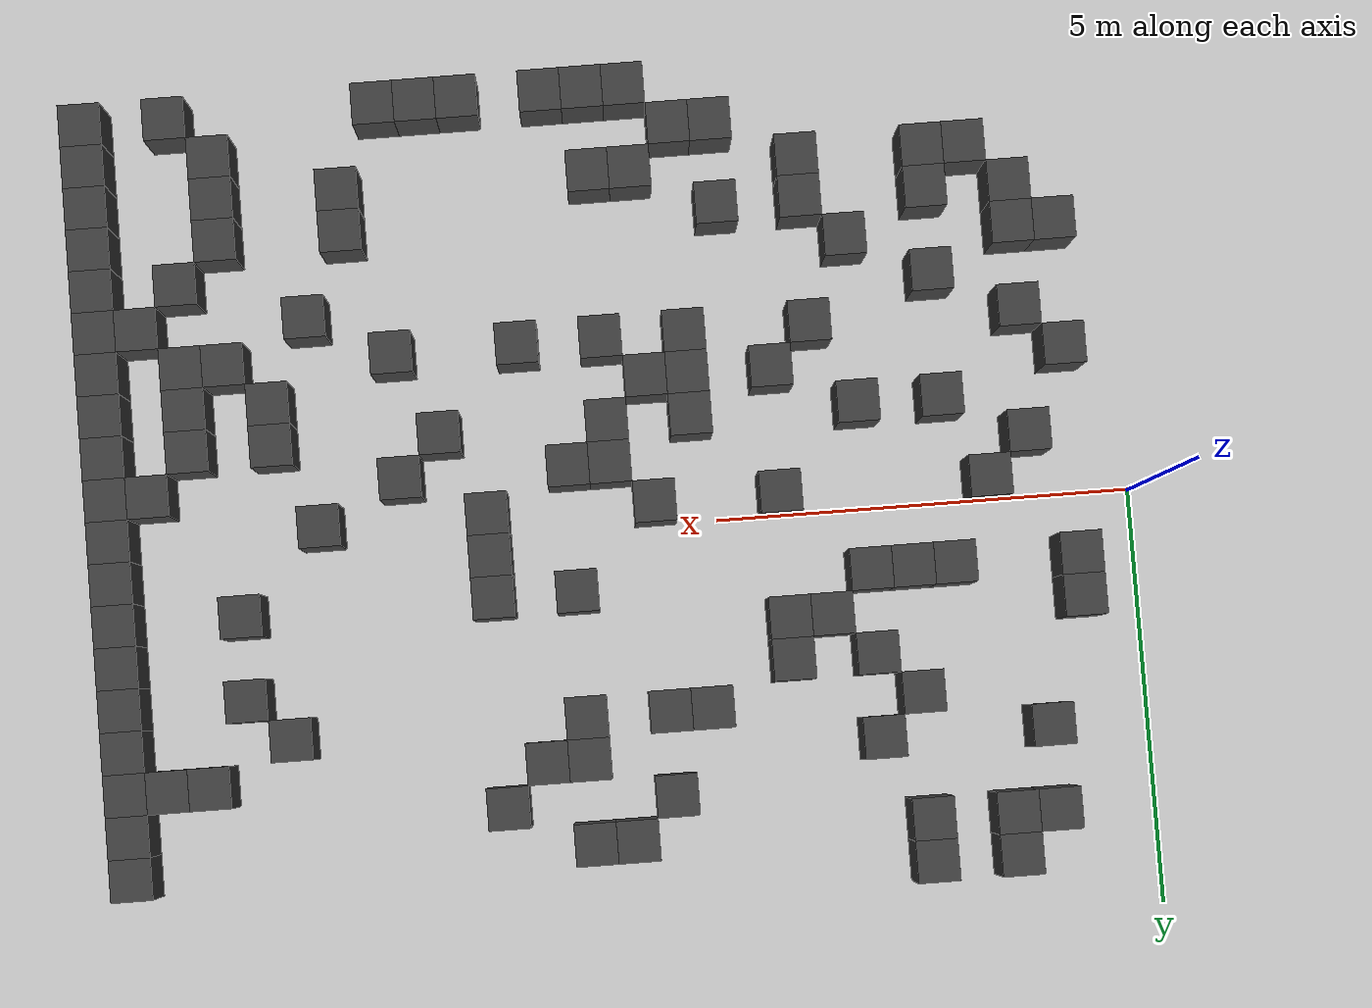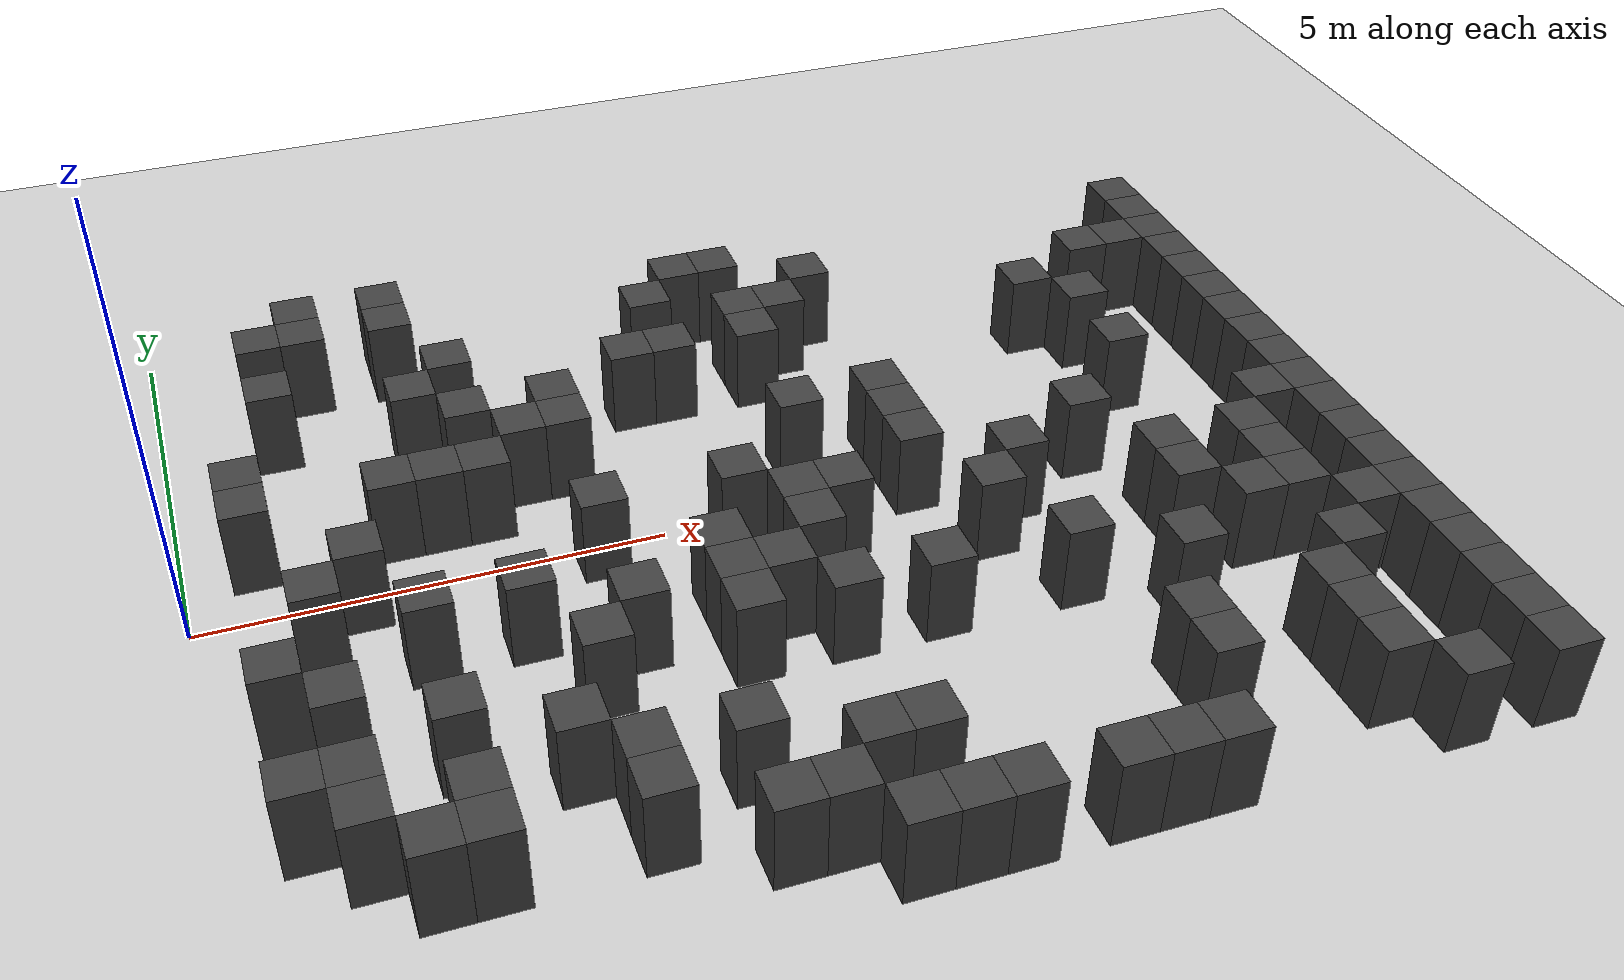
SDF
<sdf version="1.7">
 <world name="map_4390">
  <model name="ground_plane">
   <static>true</static>
   <link name="link">
    <collision name="collision">
     <geometry><plane><normal>0 0 1</normal><size>200 200</size></plane></geometry>
    </collision>
    <visual name="visual">
     <geometry><plane><normal>0 0 1</normal><size>200 200</size></plane></geometry>
     <material><ambient>0.8 0.8 0.8 1</ambient><diffuse>0.8 0.8 0.8 1</diffuse></material>
    </visual>
   </link>
  </model>
  <model name="maze_environment">
   <static>true</static>
   <link name="wall_224">
    <pose>1.750 4.250 0.500 0 0 0</pose>
    <collision name="col"><geometry><box><size>0.5 0.5 1.0</size></box></geometry></collision>
    <visual name="vis">
     <geometry><box><size>0.5 0.5 1.0</size></box></geometry>
     <material><ambient>0.15 0.15 0.15 1</ambient><diffuse>0.25 0.25 0.25 1</diffuse></material>
    </visual>
   </link>
   <link name="wall_225">
    <pose>2.750 4.250 0.500 0 0 0</pose>
    <collision name="col"><geometry><box><size>0.5 0.5 1.0</size></box></geometry></collision>
    <visual name="vis">
     <geometry><box><size>0.5 0.5 1.0</size></box></geometry>
     <material><ambient>0.15 0.15 0.15 1</ambient><diffuse>0.25 0.25 0.25 1</diffuse></material>
    </visual>
   </link>
   <link name="wall_236">
    <pose>1.250 3.750 0.500 0 0 0</pose>
    <collision name="col"><geometry><box><size>0.5 0.5 1.0</size></box></geometry></collision>
    <visual name="vis">
     <geometry><box><size>0.5 0.5 1.0</size></box></geometry>
     <material><ambient>0.15 0.15 0.15 1</ambient><diffuse>0.25 0.25 0.25 1</diffuse></material>
    </visual>
   </link>
   <link name="wall_237">
    <pose>1.750 3.750 0.500 0 0 0</pose>
    <collision name="col"><geometry><box><size>0.5 0.5 1.0</size></box></geometry></collision>
    <visual name="vis">
     <geometry><box><size>0.5 0.5 1.0</size></box></geometry>
     <material><ambient>0.15 0.15 0.15 1</ambient><diffuse>0.25 0.25 0.25 1</diffuse></material>
    </visual>
   </link>
   <link name="wall_238">
    <pose>2.750 3.750 0.500 0 0 0</pose>
    <collision name="col"><geometry><box><size>0.5 0.5 1.0</size></box></geometry></collision>
    <visual name="vis">
     <geometry><box><size>0.5 0.5 1.0</size></box></geometry>
     <material><ambient>0.15 0.15 0.15 1</ambient><diffuse>0.25 0.25 0.25 1</diffuse></material>
    </visual>
   </link>
   <link name="wall_239">
    <pose>6.250 3.750 0.500 0 0 0</pose>
    <collision name="col"><geometry><box><size>0.5 0.5 1.0</size></box></geometry></collision>
    <visual name="vis">
     <geometry><box><size>0.5 0.5 1.0</size></box></geometry>
     <material><ambient>0.15 0.15 0.15 1</ambient><diffuse>0.25 0.25 0.25 1</diffuse></material>
    </visual>
   </link>
   <link name="wall_240">
    <pose>6.750 3.750 0.500 0 0 0</pose>
    <collision name="col"><geometry><box><size>0.5 0.5 1.0</size></box></geometry></collision>
    <visual name="vis">
     <geometry><box><size>0.5 0.5 1.0</size></box></geometry>
     <material><ambient>0.15 0.15 0.15 1</ambient><diffuse>0.25 0.25 0.25 1</diffuse></material>
    </visual>
   </link>
   <link name="wall_241">
    <pose>12.250 3.750 0.500 0 0 0</pose>
    <collision name="col"><geometry><box><size>0.5 0.5 1.0</size></box></geometry></collision>
    <visual name="vis">
     <geometry><box><size>0.5 0.5 1.0</size></box></geometry>
     <material><ambient>0.15 0.15 0.15 1</ambient><diffuse>0.25 0.25 0.25 1</diffuse></material>
    </visual>
   </link>
   <link name="wall_248">
    <pose>5.750 3.250 0.500 0 0 0</pose>
    <collision name="col"><geometry><box><size>0.5 0.5 1.0</size></box></geometry></collision>
    <visual name="vis">
     <geometry><box><size>0.5 0.5 1.0</size></box></geometry>
     <material><ambient>0.15 0.15 0.15 1</ambient><diffuse>0.25 0.25 0.25 1</diffuse></material>
    </visual>
   </link>
   <link name="wall_249">
    <pose>7.750 3.250 0.500 0 0 0</pose>
    <collision name="col"><geometry><box><size>0.5 0.5 1.0</size></box></geometry></collision>
    <visual name="vis">
     <geometry><box><size>0.5 0.5 1.0</size></box></geometry>
     <material><ambient>0.15 0.15 0.15 1</ambient><diffuse>0.25 0.25 0.25 1</diffuse></material>
    </visual>
   </link>
   <link name="wall_250">
    <pose>12.250 3.250 0.500 0 0 0</pose>
    <collision name="col"><geometry><box><size>0.5 0.5 1.0</size></box></geometry></collision>
    <visual name="vis">
     <geometry><box><size>0.5 0.5 1.0</size></box></geometry>
     <material><ambient>0.15 0.15 0.15 1</ambient><diffuse>0.25 0.25 0.25 1</diffuse></material>
    </visual>
   </link>
   <link name="wall_261">
    <pose>1.250 2.750 0.500 0 0 0</pose>
    <collision name="col"><geometry><box><size>0.5 0.5 1.0</size></box></geometry></collision>
    <visual name="vis">
     <geometry><box><size>0.5 0.5 1.0</size></box></geometry>
     <material><ambient>0.15 0.15 0.15 1</ambient><diffuse>0.25 0.25 0.25 1</diffuse></material>
    </visual>
   </link>
   <link name="wall_262">
    <pose>3.250 2.750 0.500 0 0 0</pose>
    <collision name="col"><geometry><box><size>0.5 0.5 1.0</size></box></geometry></collision>
    <visual name="vis">
     <geometry><box><size>0.5 0.5 1.0</size></box></geometry>
     <material><ambient>0.15 0.15 0.15 1</ambient><diffuse>0.25 0.25 0.25 1</diffuse></material>
    </visual>
   </link>
   <link name="wall_263">
    <pose>6.750 2.750 0.500 0 0 0</pose>
    <collision name="col"><geometry><box><size>0.5 0.5 1.0</size></box></geometry></collision>
    <visual name="vis">
     <geometry><box><size>0.5 0.5 1.0</size></box></geometry>
     <material><ambient>0.15 0.15 0.15 1</ambient><diffuse>0.25 0.25 0.25 1</diffuse></material>
    </visual>
   </link>
   <link name="wall_264">
    <pose>7.250 2.750 0.500 0 0 0</pose>
    <collision name="col"><geometry><box><size>0.5 0.5 1.0</size></box></geometry></collision>
    <visual name="vis">
     <geometry><box><size>0.5 0.5 1.0</size></box></geometry>
     <material><ambient>0.15 0.15 0.15 1</ambient><diffuse>0.25 0.25 0.25 1</diffuse></material>
    </visual>
   </link>
   <link name="wall_265">
    <pose>11.250 2.750 0.500 0 0 0</pose>
    <collision name="col"><geometry><box><size>0.5 0.5 1.0</size></box></geometry></collision>
    <visual name="vis">
     <geometry><box><size>0.5 0.5 1.0</size></box></geometry>
     <material><ambient>0.15 0.15 0.15 1</ambient><diffuse>0.25 0.25 0.25 1</diffuse></material>
    </visual>
   </link>
   <link name="wall_266">
    <pose>11.750 2.750 0.500 0 0 0</pose>
    <collision name="col"><geometry><box><size>0.5 0.5 1.0</size></box></geometry></collision>
    <visual name="vis">
     <geometry><box><size>0.5 0.5 1.0</size></box></geometry>
     <material><ambient>0.15 0.15 0.15 1</ambient><diffuse>0.25 0.25 0.25 1</diffuse></material>
    </visual>
   </link>
   <link name="wall_267">
    <pose>12.250 2.750 0.500 0 0 0</pose>
    <collision name="col"><geometry><box><size>0.5 0.5 1.0</size></box></geometry></collision>
    <visual name="vis">
     <geometry><box><size>0.5 0.5 1.0</size></box></geometry>
     <material><ambient>0.15 0.15 0.15 1</ambient><diffuse>0.25 0.25 0.25 1</diffuse></material>
    </visual>
   </link>
   <link name="wall_273">
    <pose>2.750 2.250 0.500 0 0 0</pose>
    <collision name="col"><geometry><box><size>0.5 0.5 1.0</size></box></geometry></collision>
    <visual name="vis">
     <geometry><box><size>0.5 0.5 1.0</size></box></geometry>
     <material><ambient>0.15 0.15 0.15 1</ambient><diffuse>0.25 0.25 0.25 1</diffuse></material>
    </visual>
   </link>
   <link name="wall_274">
    <pose>5.250 2.250 0.500 0 0 0</pose>
    <collision name="col"><geometry><box><size>0.5 0.5 1.0</size></box></geometry></collision>
    <visual name="vis">
     <geometry><box><size>0.5 0.5 1.0</size></box></geometry>
     <material><ambient>0.15 0.15 0.15 1</ambient><diffuse>0.25 0.25 0.25 1</diffuse></material>
    </visual>
   </link>
   <link name="wall_275">
    <pose>5.750 2.250 0.500 0 0 0</pose>
    <collision name="col"><geometry><box><size>0.5 0.5 1.0</size></box></geometry></collision>
    <visual name="vis">
     <geometry><box><size>0.5 0.5 1.0</size></box></geometry>
     <material><ambient>0.15 0.15 0.15 1</ambient><diffuse>0.25 0.25 0.25 1</diffuse></material>
    </visual>
   </link>
   <link name="wall_276">
    <pose>6.750 2.250 0.500 0 0 0</pose>
    <collision name="col"><geometry><box><size>0.5 0.5 1.0</size></box></geometry></collision>
    <visual name="vis">
     <geometry><box><size>0.5 0.5 1.0</size></box></geometry>
     <material><ambient>0.15 0.15 0.15 1</ambient><diffuse>0.25 0.25 0.25 1</diffuse></material>
    </visual>
   </link>
   <link name="wall_277">
    <pose>10.250 2.250 0.500 0 0 0</pose>
    <collision name="col"><geometry><box><size>0.5 0.5 1.0</size></box></geometry></collision>
    <visual name="vis">
     <geometry><box><size>0.5 0.5 1.0</size></box></geometry>
     <material><ambient>0.15 0.15 0.15 1</ambient><diffuse>0.25 0.25 0.25 1</diffuse></material>
    </visual>
   </link>
   <link name="wall_278">
    <pose>12.250 2.250 0.500 0 0 0</pose>
    <collision name="col"><geometry><box><size>0.5 0.5 1.0</size></box></geometry></collision>
    <visual name="vis">
     <geometry><box><size>0.5 0.5 1.0</size></box></geometry>
     <material><ambient>0.15 0.15 0.15 1</ambient><diffuse>0.25 0.25 0.25 1</diffuse></material>
    </visual>
   </link>
   <link name="wall_285">
    <pose>3.250 1.750 0.500 0 0 0</pose>
    <collision name="col"><geometry><box><size>0.5 0.5 1.0</size></box></geometry></collision>
    <visual name="vis">
     <geometry><box><size>0.5 0.5 1.0</size></box></geometry>
     <material><ambient>0.15 0.15 0.15 1</ambient><diffuse>0.25 0.25 0.25 1</diffuse></material>
    </visual>
   </link>
   <link name="wall_286">
    <pose>4.250 1.750 0.500 0 0 0</pose>
    <collision name="col"><geometry><box><size>0.5 0.5 1.0</size></box></geometry></collision>
    <visual name="vis">
     <geometry><box><size>0.5 0.5 1.0</size></box></geometry>
     <material><ambient>0.15 0.15 0.15 1</ambient><diffuse>0.25 0.25 0.25 1</diffuse></material>
    </visual>
   </link>
   <link name="wall_287">
    <pose>10.750 1.750 0.500 0 0 0</pose>
    <collision name="col"><geometry><box><size>0.5 0.5 1.0</size></box></geometry></collision>
    <visual name="vis">
     <geometry><box><size>0.5 0.5 1.0</size></box></geometry>
     <material><ambient>0.15 0.15 0.15 1</ambient><diffuse>0.25 0.25 0.25 1</diffuse></material>
    </visual>
   </link>
   <link name="wall_288">
    <pose>12.250 1.750 0.500 0 0 0</pose>
    <collision name="col"><geometry><box><size>0.5 0.5 1.0</size></box></geometry></collision>
    <visual name="vis">
     <geometry><box><size>0.5 0.5 1.0</size></box></geometry>
     <material><ambient>0.15 0.15 0.15 1</ambient><diffuse>0.25 0.25 0.25 1</diffuse></material>
    </visual>
   </link>
   <link name="wall_299">
    <pose>0.750 1.250 0.500 0 0 0</pose>
    <collision name="col"><geometry><box><size>0.5 0.5 1.0</size></box></geometry></collision>
    <visual name="vis">
     <geometry><box><size>0.5 0.5 1.0</size></box></geometry>
     <material><ambient>0.15 0.15 0.15 1</ambient><diffuse>0.25 0.25 0.25 1</diffuse></material>
    </visual>
   </link>
   <link name="wall_300">
    <pose>3.750 1.250 0.500 0 0 0</pose>
    <collision name="col"><geometry><box><size>0.5 0.5 1.0</size></box></geometry></collision>
    <visual name="vis">
     <geometry><box><size>0.5 0.5 1.0</size></box></geometry>
     <material><ambient>0.15 0.15 0.15 1</ambient><diffuse>0.25 0.25 0.25 1</diffuse></material>
    </visual>
   </link>
   <link name="wall_301">
    <pose>4.250 1.250 0.500 0 0 0</pose>
    <collision name="col"><geometry><box><size>0.5 0.5 1.0</size></box></geometry></collision>
    <visual name="vis">
     <geometry><box><size>0.5 0.5 1.0</size></box></geometry>
     <material><ambient>0.15 0.15 0.15 1</ambient><diffuse>0.25 0.25 0.25 1</diffuse></material>
    </visual>
   </link>
   <link name="wall_302">
    <pose>12.250 1.250 0.500 0 0 0</pose>
    <collision name="col"><geometry><box><size>0.5 0.5 1.0</size></box></geometry></collision>
    <visual name="vis">
     <geometry><box><size>0.5 0.5 1.0</size></box></geometry>
     <material><ambient>0.15 0.15 0.15 1</ambient><diffuse>0.25 0.25 0.25 1</diffuse></material>
    </visual>
   </link>
   <link name="wall_307">
    <pose>0.750 0.750 0.500 0 0 0</pose>
    <collision name="col"><geometry><box><size>0.5 0.5 1.0</size></box></geometry></collision>
    <visual name="vis">
     <geometry><box><size>0.5 0.5 1.0</size></box></geometry>
     <material><ambient>0.15 0.15 0.15 1</ambient><diffuse>0.25 0.25 0.25 1</diffuse></material>
    </visual>
   </link>
   <link name="wall_308">
    <pose>2.250 0.750 0.500 0 0 0</pose>
    <collision name="col"><geometry><box><size>0.5 0.5 1.0</size></box></geometry></collision>
    <visual name="vis">
     <geometry><box><size>0.5 0.5 1.0</size></box></geometry>
     <material><ambient>0.15 0.15 0.15 1</ambient><diffuse>0.25 0.25 0.25 1</diffuse></material>
    </visual>
   </link>
   <link name="wall_309">
    <pose>2.750 0.750 0.500 0 0 0</pose>
    <collision name="col"><geometry><box><size>0.5 0.5 1.0</size></box></geometry></collision>
    <visual name="vis">
     <geometry><box><size>0.5 0.5 1.0</size></box></geometry>
     <material><ambient>0.15 0.15 0.15 1</ambient><diffuse>0.25 0.25 0.25 1</diffuse></material>
    </visual>
   </link>
   <link name="wall_310">
    <pose>3.250 0.750 0.500 0 0 0</pose>
    <collision name="col"><geometry><box><size>0.5 0.5 1.0</size></box></geometry></collision>
    <visual name="vis">
     <geometry><box><size>0.5 0.5 1.0</size></box></geometry>
     <material><ambient>0.15 0.15 0.15 1</ambient><diffuse>0.25 0.25 0.25 1</diffuse></material>
    </visual>
   </link>
   <link name="wall_311">
    <pose>6.750 0.750 0.500 0 0 0</pose>
    <collision name="col"><geometry><box><size>0.5 0.5 1.0</size></box></geometry></collision>
    <visual name="vis">
     <geometry><box><size>0.5 0.5 1.0</size></box></geometry>
     <material><ambient>0.15 0.15 0.15 1</ambient><diffuse>0.25 0.25 0.25 1</diffuse></material>
    </visual>
   </link>
   <link name="wall_312">
    <pose>7.750 0.750 0.500 0 0 0</pose>
    <collision name="col"><geometry><box><size>0.5 0.5 1.0</size></box></geometry></collision>
    <visual name="vis">
     <geometry><box><size>0.5 0.5 1.0</size></box></geometry>
     <material><ambient>0.15 0.15 0.15 1</ambient><diffuse>0.25 0.25 0.25 1</diffuse></material>
    </visual>
   </link>
   <link name="wall_313">
    <pose>10.750 0.750 0.500 0 0 0</pose>
    <collision name="col"><geometry><box><size>0.5 0.5 1.0</size></box></geometry></collision>
    <visual name="vis">
     <geometry><box><size>0.5 0.5 1.0</size></box></geometry>
     <material><ambient>0.15 0.15 0.15 1</ambient><diffuse>0.25 0.25 0.25 1</diffuse></material>
    </visual>
   </link>
   <link name="wall_314">
    <pose>12.250 0.750 0.500 0 0 0</pose>
    <collision name="col"><geometry><box><size>0.5 0.5 1.0</size></box></geometry></collision>
    <visual name="vis">
     <geometry><box><size>0.5 0.5 1.0</size></box></geometry>
     <material><ambient>0.15 0.15 0.15 1</ambient><diffuse>0.25 0.25 0.25 1</diffuse></material>
    </visual>
   </link>
   <link name="wall_322">
    <pose>7.750 0.250 0.500 0 0 0</pose>
    <collision name="col"><geometry><box><size>0.5 0.5 1.0</size></box></geometry></collision>
    <visual name="vis">
     <geometry><box><size>0.5 0.5 1.0</size></box></geometry>
     <material><ambient>0.15 0.15 0.15 1</ambient><diffuse>0.25 0.25 0.25 1</diffuse></material>
    </visual>
   </link>
   <link name="wall_323">
    <pose>12.250 0.250 0.500 0 0 0</pose>
    <collision name="col"><geometry><box><size>0.5 0.5 1.0</size></box></geometry></collision>
    <visual name="vis">
     <geometry><box><size>0.5 0.5 1.0</size></box></geometry>
     <material><ambient>0.15 0.15 0.15 1</ambient><diffuse>0.25 0.25 0.25 1</diffuse></material>
    </visual>
   </link>
   <link name="wall_333">
    <pose>1.750 -0.250 0.500 0 0 0</pose>
    <collision name="col"><geometry><box><size>0.5 0.5 1.0</size></box></geometry></collision>
    <visual name="vis">
     <geometry><box><size>0.5 0.5 1.0</size></box></geometry>
     <material><ambient>0.15 0.15 0.15 1</ambient><diffuse>0.25 0.25 0.25 1</diffuse></material>
    </visual>
   </link>
   <link name="wall_334">
    <pose>4.250 -0.250 0.500 0 0 0</pose>
    <collision name="col"><geometry><box><size>0.5 0.5 1.0</size></box></geometry></collision>
    <visual name="vis">
     <geometry><box><size>0.5 0.5 1.0</size></box></geometry>
     <material><ambient>0.15 0.15 0.15 1</ambient><diffuse>0.25 0.25 0.25 1</diffuse></material>
    </visual>
   </link>
   <link name="wall_335">
    <pose>5.750 -0.250 0.500 0 0 0</pose>
    <collision name="col"><geometry><box><size>0.5 0.5 1.0</size></box></geometry></collision>
    <visual name="vis">
     <geometry><box><size>0.5 0.5 1.0</size></box></geometry>
     <material><ambient>0.15 0.15 0.15 1</ambient><diffuse>0.25 0.25 0.25 1</diffuse></material>
    </visual>
   </link>
   <link name="wall_336">
    <pose>7.750 -0.250 0.500 0 0 0</pose>
    <collision name="col"><geometry><box><size>0.5 0.5 1.0</size></box></geometry></collision>
    <visual name="vis">
     <geometry><box><size>0.5 0.5 1.0</size></box></geometry>
     <material><ambient>0.15 0.15 0.15 1</ambient><diffuse>0.25 0.25 0.25 1</diffuse></material>
    </visual>
   </link>
   <link name="wall_337">
    <pose>9.750 -0.250 0.500 0 0 0</pose>
    <collision name="col"><geometry><box><size>0.5 0.5 1.0</size></box></geometry></collision>
    <visual name="vis">
     <geometry><box><size>0.5 0.5 1.0</size></box></geometry>
     <material><ambient>0.15 0.15 0.15 1</ambient><diffuse>0.25 0.25 0.25 1</diffuse></material>
    </visual>
   </link>
   <link name="wall_338">
    <pose>12.250 -0.250 0.500 0 0 0</pose>
    <collision name="col"><geometry><box><size>0.5 0.5 1.0</size></box></geometry></collision>
    <visual name="vis">
     <geometry><box><size>0.5 0.5 1.0</size></box></geometry>
     <material><ambient>0.15 0.15 0.15 1</ambient><diffuse>0.25 0.25 0.25 1</diffuse></material>
    </visual>
   </link>
   <link name="wall_347">
    <pose>1.250 -0.750 0.500 0 0 0</pose>
    <collision name="col"><geometry><box><size>0.5 0.5 1.0</size></box></geometry></collision>
    <visual name="vis">
     <geometry><box><size>0.5 0.5 1.0</size></box></geometry>
     <material><ambient>0.15 0.15 0.15 1</ambient><diffuse>0.25 0.25 0.25 1</diffuse></material>
    </visual>
   </link>
   <link name="wall_348">
    <pose>6.250 -0.750 0.500 0 0 0</pose>
    <collision name="col"><geometry><box><size>0.5 0.5 1.0</size></box></geometry></collision>
    <visual name="vis">
     <geometry><box><size>0.5 0.5 1.0</size></box></geometry>
     <material><ambient>0.15 0.15 0.15 1</ambient><diffuse>0.25 0.25 0.25 1</diffuse></material>
    </visual>
   </link>
   <link name="wall_349">
    <pose>6.750 -0.750 0.500 0 0 0</pose>
    <collision name="col"><geometry><box><size>0.5 0.5 1.0</size></box></geometry></collision>
    <visual name="vis">
     <geometry><box><size>0.5 0.5 1.0</size></box></geometry>
     <material><ambient>0.15 0.15 0.15 1</ambient><diffuse>0.25 0.25 0.25 1</diffuse></material>
    </visual>
   </link>
   <link name="wall_350">
    <pose>8.750 -0.750 0.500 0 0 0</pose>
    <collision name="col"><geometry><box><size>0.5 0.5 1.0</size></box></geometry></collision>
    <visual name="vis">
     <geometry><box><size>0.5 0.5 1.0</size></box></geometry>
     <material><ambient>0.15 0.15 0.15 1</ambient><diffuse>0.25 0.25 0.25 1</diffuse></material>
    </visual>
   </link>
   <link name="wall_351">
    <pose>11.750 -0.750 0.500 0 0 0</pose>
    <collision name="col"><geometry><box><size>0.5 0.5 1.0</size></box></geometry></collision>
    <visual name="vis">
     <geometry><box><size>0.5 0.5 1.0</size></box></geometry>
     <material><ambient>0.15 0.15 0.15 1</ambient><diffuse>0.25 0.25 0.25 1</diffuse></material>
    </visual>
   </link>
   <link name="wall_352">
    <pose>12.250 -0.750 0.500 0 0 0</pose>
    <collision name="col"><geometry><box><size>0.5 0.5 1.0</size></box></geometry></collision>
    <visual name="vis">
     <geometry><box><size>0.5 0.5 1.0</size></box></geometry>
     <material><ambient>0.15 0.15 0.15 1</ambient><diffuse>0.25 0.25 0.25 1</diffuse></material>
    </visual>
   </link>
   <link name="wall_360">
    <pose>2.250 -1.250 0.500 0 0 0</pose>
    <collision name="col"><geometry><box><size>0.5 0.5 1.0</size></box></geometry></collision>
    <visual name="vis">
     <geometry><box><size>0.5 0.5 1.0</size></box></geometry>
     <material><ambient>0.15 0.15 0.15 1</ambient><diffuse>0.25 0.25 0.25 1</diffuse></material>
    </visual>
   </link>
   <link name="wall_361">
    <pose>3.250 -1.250 0.500 0 0 0</pose>
    <collision name="col"><geometry><box><size>0.5 0.5 1.0</size></box></geometry></collision>
    <visual name="vis">
     <geometry><box><size>0.5 0.5 1.0</size></box></geometry>
     <material><ambient>0.15 0.15 0.15 1</ambient><diffuse>0.25 0.25 0.25 1</diffuse></material>
    </visual>
   </link>
   <link name="wall_362">
    <pose>5.250 -1.250 0.500 0 0 0</pose>
    <collision name="col"><geometry><box><size>0.5 0.5 1.0</size></box></geometry></collision>
    <visual name="vis">
     <geometry><box><size>0.5 0.5 1.0</size></box></geometry>
     <material><ambient>0.15 0.15 0.15 1</ambient><diffuse>0.25 0.25 0.25 1</diffuse></material>
    </visual>
   </link>
   <link name="wall_363">
    <pose>6.250 -1.250 0.500 0 0 0</pose>
    <collision name="col"><geometry><box><size>0.5 0.5 1.0</size></box></geometry></collision>
    <visual name="vis">
     <geometry><box><size>0.5 0.5 1.0</size></box></geometry>
     <material><ambient>0.15 0.15 0.15 1</ambient><diffuse>0.25 0.25 0.25 1</diffuse></material>
    </visual>
   </link>
   <link name="wall_364">
    <pose>8.250 -1.250 0.500 0 0 0</pose>
    <collision name="col"><geometry><box><size>0.5 0.5 1.0</size></box></geometry></collision>
    <visual name="vis">
     <geometry><box><size>0.5 0.5 1.0</size></box></geometry>
     <material><ambient>0.15 0.15 0.15 1</ambient><diffuse>0.25 0.25 0.25 1</diffuse></material>
    </visual>
   </link>
   <link name="wall_365">
    <pose>10.250 -1.250 0.500 0 0 0</pose>
    <collision name="col"><geometry><box><size>0.5 0.5 1.0</size></box></geometry></collision>
    <visual name="vis">
     <geometry><box><size>0.5 0.5 1.0</size></box></geometry>
     <material><ambient>0.15 0.15 0.15 1</ambient><diffuse>0.25 0.25 0.25 1</diffuse></material>
    </visual>
   </link>
   <link name="wall_366">
    <pose>11.250 -1.250 0.500 0 0 0</pose>
    <collision name="col"><geometry><box><size>0.5 0.5 1.0</size></box></geometry></collision>
    <visual name="vis">
     <geometry><box><size>0.5 0.5 1.0</size></box></geometry>
     <material><ambient>0.15 0.15 0.15 1</ambient><diffuse>0.25 0.25 0.25 1</diffuse></material>
    </visual>
   </link>
   <link name="wall_367">
    <pose>12.250 -1.250 0.500 0 0 0</pose>
    <collision name="col"><geometry><box><size>0.5 0.5 1.0</size></box></geometry></collision>
    <visual name="vis">
     <geometry><box><size>0.5 0.5 1.0</size></box></geometry>
     <material><ambient>0.15 0.15 0.15 1</ambient><diffuse>0.25 0.25 0.25 1</diffuse></material>
    </visual>
   </link>
   <link name="wall_374">
    <pose>0.750 -1.750 0.500 0 0 0</pose>
    <collision name="col"><geometry><box><size>0.5 0.5 1.0</size></box></geometry></collision>
    <visual name="vis">
     <geometry><box><size>0.5 0.5 1.0</size></box></geometry>
     <material><ambient>0.15 0.15 0.15 1</ambient><diffuse>0.25 0.25 0.25 1</diffuse></material>
    </visual>
   </link>
   <link name="wall_375">
    <pose>4.250 -1.750 0.500 0 0 0</pose>
    <collision name="col"><geometry><box><size>0.5 0.5 1.0</size></box></geometry></collision>
    <visual name="vis">
     <geometry><box><size>0.5 0.5 1.0</size></box></geometry>
     <material><ambient>0.15 0.15 0.15 1</ambient><diffuse>0.25 0.25 0.25 1</diffuse></material>
    </visual>
   </link>
   <link name="wall_376">
    <pose>5.250 -1.750 0.500 0 0 0</pose>
    <collision name="col"><geometry><box><size>0.5 0.5 1.0</size></box></geometry></collision>
    <visual name="vis">
     <geometry><box><size>0.5 0.5 1.0</size></box></geometry>
     <material><ambient>0.15 0.15 0.15 1</ambient><diffuse>0.25 0.25 0.25 1</diffuse></material>
    </visual>
   </link>
   <link name="wall_377">
    <pose>5.750 -1.750 0.500 0 0 0</pose>
    <collision name="col"><geometry><box><size>0.5 0.5 1.0</size></box></geometry></collision>
    <visual name="vis">
     <geometry><box><size>0.5 0.5 1.0</size></box></geometry>
     <material><ambient>0.15 0.15 0.15 1</ambient><diffuse>0.25 0.25 0.25 1</diffuse></material>
    </visual>
   </link>
   <link name="wall_378">
    <pose>10.250 -1.750 0.500 0 0 0</pose>
    <collision name="col"><geometry><box><size>0.5 0.5 1.0</size></box></geometry></collision>
    <visual name="vis">
     <geometry><box><size>0.5 0.5 1.0</size></box></geometry>
     <material><ambient>0.15 0.15 0.15 1</ambient><diffuse>0.25 0.25 0.25 1</diffuse></material>
    </visual>
   </link>
   <link name="wall_379">
    <pose>11.250 -1.750 0.500 0 0 0</pose>
    <collision name="col"><geometry><box><size>0.5 0.5 1.0</size></box></geometry></collision>
    <visual name="vis">
     <geometry><box><size>0.5 0.5 1.0</size></box></geometry>
     <material><ambient>0.15 0.15 0.15 1</ambient><diffuse>0.25 0.25 0.25 1</diffuse></material>
    </visual>
   </link>
   <link name="wall_380">
    <pose>12.250 -1.750 0.500 0 0 0</pose>
    <collision name="col"><geometry><box><size>0.5 0.5 1.0</size></box></geometry></collision>
    <visual name="vis">
     <geometry><box><size>0.5 0.5 1.0</size></box></geometry>
     <material><ambient>0.15 0.15 0.15 1</ambient><diffuse>0.25 0.25 0.25 1</diffuse></material>
    </visual>
   </link>
   <link name="wall_387">
    <pose>1.250 -2.250 0.500 0 0 0</pose>
    <collision name="col"><geometry><box><size>0.5 0.5 1.0</size></box></geometry></collision>
    <visual name="vis">
     <geometry><box><size>0.5 0.5 1.0</size></box></geometry>
     <material><ambient>0.15 0.15 0.15 1</ambient><diffuse>0.25 0.25 0.25 1</diffuse></material>
    </visual>
   </link>
   <link name="wall_388">
    <pose>3.750 -2.250 0.500 0 0 0</pose>
    <collision name="col"><geometry><box><size>0.5 0.5 1.0</size></box></geometry></collision>
    <visual name="vis">
     <geometry><box><size>0.5 0.5 1.0</size></box></geometry>
     <material><ambient>0.15 0.15 0.15 1</ambient><diffuse>0.25 0.25 0.25 1</diffuse></material>
    </visual>
   </link>
   <link name="wall_389">
    <pose>5.250 -2.250 0.500 0 0 0</pose>
    <collision name="col"><geometry><box><size>0.5 0.5 1.0</size></box></geometry></collision>
    <visual name="vis">
     <geometry><box><size>0.5 0.5 1.0</size></box></geometry>
     <material><ambient>0.15 0.15 0.15 1</ambient><diffuse>0.25 0.25 0.25 1</diffuse></material>
    </visual>
   </link>
   <link name="wall_390">
    <pose>6.250 -2.250 0.500 0 0 0</pose>
    <collision name="col"><geometry><box><size>0.5 0.5 1.0</size></box></geometry></collision>
    <visual name="vis">
     <geometry><box><size>0.5 0.5 1.0</size></box></geometry>
     <material><ambient>0.15 0.15 0.15 1</ambient><diffuse>0.25 0.25 0.25 1</diffuse></material>
    </visual>
   </link>
   <link name="wall_391">
    <pose>7.250 -2.250 0.500 0 0 0</pose>
    <collision name="col"><geometry><box><size>0.5 0.5 1.0</size></box></geometry></collision>
    <visual name="vis">
     <geometry><box><size>0.5 0.5 1.0</size></box></geometry>
     <material><ambient>0.15 0.15 0.15 1</ambient><diffuse>0.25 0.25 0.25 1</diffuse></material>
    </visual>
   </link>
   <link name="wall_392">
    <pose>8.750 -2.250 0.500 0 0 0</pose>
    <collision name="col"><geometry><box><size>0.5 0.5 1.0</size></box></geometry></collision>
    <visual name="vis">
     <geometry><box><size>0.5 0.5 1.0</size></box></geometry>
     <material><ambient>0.15 0.15 0.15 1</ambient><diffuse>0.25 0.25 0.25 1</diffuse></material>
    </visual>
   </link>
   <link name="wall_393">
    <pose>10.750 -2.250 0.500 0 0 0</pose>
    <collision name="col"><geometry><box><size>0.5 0.5 1.0</size></box></geometry></collision>
    <visual name="vis">
     <geometry><box><size>0.5 0.5 1.0</size></box></geometry>
     <material><ambient>0.15 0.15 0.15 1</ambient><diffuse>0.25 0.25 0.25 1</diffuse></material>
    </visual>
   </link>
   <link name="wall_394">
    <pose>11.250 -2.250 0.500 0 0 0</pose>
    <collision name="col"><geometry><box><size>0.5 0.5 1.0</size></box></geometry></collision>
    <visual name="vis">
     <geometry><box><size>0.5 0.5 1.0</size></box></geometry>
     <material><ambient>0.15 0.15 0.15 1</ambient><diffuse>0.25 0.25 0.25 1</diffuse></material>
    </visual>
   </link>
   <link name="wall_395">
    <pose>12.250 -2.250 0.500 0 0 0</pose>
    <collision name="col"><geometry><box><size>0.5 0.5 1.0</size></box></geometry></collision>
    <visual name="vis">
     <geometry><box><size>0.5 0.5 1.0</size></box></geometry>
     <material><ambient>0.15 0.15 0.15 1</ambient><diffuse>0.25 0.25 0.25 1</diffuse></material>
    </visual>
   </link>
   <link name="wall_402">
    <pose>2.250 -2.750 0.500 0 0 0</pose>
    <collision name="col"><geometry><box><size>0.5 0.5 1.0</size></box></geometry></collision>
    <visual name="vis">
     <geometry><box><size>0.5 0.5 1.0</size></box></geometry>
     <material><ambient>0.15 0.15 0.15 1</ambient><diffuse>0.25 0.25 0.25 1</diffuse></material>
    </visual>
   </link>
   <link name="wall_403">
    <pose>9.750 -2.750 0.500 0 0 0</pose>
    <collision name="col"><geometry><box><size>0.5 0.5 1.0</size></box></geometry></collision>
    <visual name="vis">
     <geometry><box><size>0.5 0.5 1.0</size></box></geometry>
     <material><ambient>0.15 0.15 0.15 1</ambient><diffuse>0.25 0.25 0.25 1</diffuse></material>
    </visual>
   </link>
   <link name="wall_404">
    <pose>11.750 -2.750 0.500 0 0 0</pose>
    <collision name="col"><geometry><box><size>0.5 0.5 1.0</size></box></geometry></collision>
    <visual name="vis">
     <geometry><box><size>0.5 0.5 1.0</size></box></geometry>
     <material><ambient>0.15 0.15 0.15 1</ambient><diffuse>0.25 0.25 0.25 1</diffuse></material>
    </visual>
   </link>
   <link name="wall_405">
    <pose>12.250 -2.750 0.500 0 0 0</pose>
    <collision name="col"><geometry><box><size>0.5 0.5 1.0</size></box></geometry></collision>
    <visual name="vis">
     <geometry><box><size>0.5 0.5 1.0</size></box></geometry>
     <material><ambient>0.15 0.15 0.15 1</ambient><diffuse>0.25 0.25 0.25 1</diffuse></material>
    </visual>
   </link>
   <link name="wall_415">
    <pose>0.750 -3.250 0.500 0 0 0</pose>
    <collision name="col"><geometry><box><size>0.5 0.5 1.0</size></box></geometry></collision>
    <visual name="vis">
     <geometry><box><size>0.5 0.5 1.0</size></box></geometry>
     <material><ambient>0.15 0.15 0.15 1</ambient><diffuse>0.25 0.25 0.25 1</diffuse></material>
    </visual>
   </link>
   <link name="wall_416">
    <pose>1.250 -3.250 0.500 0 0 0</pose>
    <collision name="col"><geometry><box><size>0.5 0.5 1.0</size></box></geometry></collision>
    <visual name="vis">
     <geometry><box><size>0.5 0.5 1.0</size></box></geometry>
     <material><ambient>0.15 0.15 0.15 1</ambient><diffuse>0.25 0.25 0.25 1</diffuse></material>
    </visual>
   </link>
   <link name="wall_417">
    <pose>3.250 -3.250 0.500 0 0 0</pose>
    <collision name="col"><geometry><box><size>0.5 0.5 1.0</size></box></geometry></collision>
    <visual name="vis">
     <geometry><box><size>0.5 0.5 1.0</size></box></geometry>
     <material><ambient>0.15 0.15 0.15 1</ambient><diffuse>0.25 0.25 0.25 1</diffuse></material>
    </visual>
   </link>
   <link name="wall_418">
    <pose>11.250 -3.250 0.500 0 0 0</pose>
    <collision name="col"><geometry><box><size>0.5 0.5 1.0</size></box></geometry></collision>
    <visual name="vis">
     <geometry><box><size>0.5 0.5 1.0</size></box></geometry>
     <material><ambient>0.15 0.15 0.15 1</ambient><diffuse>0.25 0.25 0.25 1</diffuse></material>
    </visual>
   </link>
   <link name="wall_419">
    <pose>12.250 -3.250 0.500 0 0 0</pose>
    <collision name="col"><geometry><box><size>0.5 0.5 1.0</size></box></geometry></collision>
    <visual name="vis">
     <geometry><box><size>0.5 0.5 1.0</size></box></geometry>
     <material><ambient>0.15 0.15 0.15 1</ambient><diffuse>0.25 0.25 0.25 1</diffuse></material>
    </visual>
   </link>
   <link name="wall_424">
    <pose>1.250 -3.750 0.500 0 0 0</pose>
    <collision name="col"><geometry><box><size>0.5 0.5 1.0</size></box></geometry></collision>
    <visual name="vis">
     <geometry><box><size>0.5 0.5 1.0</size></box></geometry>
     <material><ambient>0.15 0.15 0.15 1</ambient><diffuse>0.25 0.25 0.25 1</diffuse></material>
    </visual>
   </link>
   <link name="wall_425">
    <pose>2.250 -3.750 0.500 0 0 0</pose>
    <collision name="col"><geometry><box><size>0.5 0.5 1.0</size></box></geometry></collision>
    <visual name="vis">
     <geometry><box><size>0.5 0.5 1.0</size></box></geometry>
     <material><ambient>0.15 0.15 0.15 1</ambient><diffuse>0.25 0.25 0.25 1</diffuse></material>
    </visual>
   </link>
   <link name="wall_426">
    <pose>3.750 -3.750 0.500 0 0 0</pose>
    <collision name="col"><geometry><box><size>0.5 0.5 1.0</size></box></geometry></collision>
    <visual name="vis">
     <geometry><box><size>0.5 0.5 1.0</size></box></geometry>
     <material><ambient>0.15 0.15 0.15 1</ambient><diffuse>0.25 0.25 0.25 1</diffuse></material>
    </visual>
   </link>
   <link name="wall_427">
    <pose>4.750 -3.750 0.500 0 0 0</pose>
    <collision name="col"><geometry><box><size>0.5 0.5 1.0</size></box></geometry></collision>
    <visual name="vis">
     <geometry><box><size>0.5 0.5 1.0</size></box></geometry>
     <material><ambient>0.15 0.15 0.15 1</ambient><diffuse>0.25 0.25 0.25 1</diffuse></material>
    </visual>
   </link>
   <link name="wall_428">
    <pose>9.250 -3.750 0.500 0 0 0</pose>
    <collision name="col"><geometry><box><size>0.5 0.5 1.0</size></box></geometry></collision>
    <visual name="vis">
     <geometry><box><size>0.5 0.5 1.0</size></box></geometry>
     <material><ambient>0.15 0.15 0.15 1</ambient><diffuse>0.25 0.25 0.25 1</diffuse></material>
    </visual>
   </link>
   <link name="wall_429">
    <pose>10.750 -3.750 0.500 0 0 0</pose>
    <collision name="col"><geometry><box><size>0.5 0.5 1.0</size></box></geometry></collision>
    <visual name="vis">
     <geometry><box><size>0.5 0.5 1.0</size></box></geometry>
     <material><ambient>0.15 0.15 0.15 1</ambient><diffuse>0.25 0.25 0.25 1</diffuse></material>
    </visual>
   </link>
   <link name="wall_430">
    <pose>12.250 -3.750 0.500 0 0 0</pose>
    <collision name="col"><geometry><box><size>0.5 0.5 1.0</size></box></geometry></collision>
    <visual name="vis">
     <geometry><box><size>0.5 0.5 1.0</size></box></geometry>
     <material><ambient>0.15 0.15 0.15 1</ambient><diffuse>0.25 0.25 0.25 1</diffuse></material>
    </visual>
   </link>
   <link name="wall_438">
    <pose>1.750 -4.250 0.500 0 0 0</pose>
    <collision name="col"><geometry><box><size>0.5 0.5 1.0</size></box></geometry></collision>
    <visual name="vis">
     <geometry><box><size>0.5 0.5 1.0</size></box></geometry>
     <material><ambient>0.15 0.15 0.15 1</ambient><diffuse>0.25 0.25 0.25 1</diffuse></material>
    </visual>
   </link>
   <link name="wall_439">
    <pose>2.250 -4.250 0.500 0 0 0</pose>
    <collision name="col"><geometry><box><size>0.5 0.5 1.0</size></box></geometry></collision>
    <visual name="vis">
     <geometry><box><size>0.5 0.5 1.0</size></box></geometry>
     <material><ambient>0.15 0.15 0.15 1</ambient><diffuse>0.25 0.25 0.25 1</diffuse></material>
    </visual>
   </link>
   <link name="wall_440">
    <pose>3.750 -4.250 0.500 0 0 0</pose>
    <collision name="col"><geometry><box><size>0.5 0.5 1.0</size></box></geometry></collision>
    <visual name="vis">
     <geometry><box><size>0.5 0.5 1.0</size></box></geometry>
     <material><ambient>0.15 0.15 0.15 1</ambient><diffuse>0.25 0.25 0.25 1</diffuse></material>
    </visual>
   </link>
   <link name="wall_441">
    <pose>5.750 -4.250 0.500 0 0 0</pose>
    <collision name="col"><geometry><box><size>0.5 0.5 1.0</size></box></geometry></collision>
    <visual name="vis">
     <geometry><box><size>0.5 0.5 1.0</size></box></geometry>
     <material><ambient>0.15 0.15 0.15 1</ambient><diffuse>0.25 0.25 0.25 1</diffuse></material>
    </visual>
   </link>
   <link name="wall_442">
    <pose>6.250 -4.250 0.500 0 0 0</pose>
    <collision name="col"><geometry><box><size>0.5 0.5 1.0</size></box></geometry></collision>
    <visual name="vis">
     <geometry><box><size>0.5 0.5 1.0</size></box></geometry>
     <material><ambient>0.15 0.15 0.15 1</ambient><diffuse>0.25 0.25 0.25 1</diffuse></material>
    </visual>
   </link>
   <link name="wall_443">
    <pose>9.250 -4.250 0.500 0 0 0</pose>
    <collision name="col"><geometry><box><size>0.5 0.5 1.0</size></box></geometry></collision>
    <visual name="vis">
     <geometry><box><size>0.5 0.5 1.0</size></box></geometry>
     <material><ambient>0.15 0.15 0.15 1</ambient><diffuse>0.25 0.25 0.25 1</diffuse></material>
    </visual>
   </link>
   <link name="wall_444">
    <pose>10.750 -4.250 0.500 0 0 0</pose>
    <collision name="col"><geometry><box><size>0.5 0.5 1.0</size></box></geometry></collision>
    <visual name="vis">
     <geometry><box><size>0.5 0.5 1.0</size></box></geometry>
     <material><ambient>0.15 0.15 0.15 1</ambient><diffuse>0.25 0.25 0.25 1</diffuse></material>
    </visual>
   </link>
   <link name="wall_445">
    <pose>12.250 -4.250 0.500 0 0 0</pose>
    <collision name="col"><geometry><box><size>0.5 0.5 1.0</size></box></geometry></collision>
    <visual name="vis">
     <geometry><box><size>0.5 0.5 1.0</size></box></geometry>
     <material><ambient>0.15 0.15 0.15 1</ambient><diffuse>0.25 0.25 0.25 1</diffuse></material>
    </visual>
   </link>
   <link name="wall_449">
    <pose>4.750 -4.750 0.500 0 0 0</pose>
    <collision name="col"><geometry><box><size>0.5 0.5 1.0</size></box></geometry></collision>
    <visual name="vis">
     <geometry><box><size>0.5 0.5 1.0</size></box></geometry>
     <material><ambient>0.15 0.15 0.15 1</ambient><diffuse>0.25 0.25 0.25 1</diffuse></material>
    </visual>
   </link>
   <link name="wall_450">
    <pose>5.250 -4.750 0.500 0 0 0</pose>
    <collision name="col"><geometry><box><size>0.5 0.5 1.0</size></box></geometry></collision>
    <visual name="vis">
     <geometry><box><size>0.5 0.5 1.0</size></box></geometry>
     <material><ambient>0.15 0.15 0.15 1</ambient><diffuse>0.25 0.25 0.25 1</diffuse></material>
    </visual>
   </link>
   <link name="wall_451">
    <pose>10.750 -4.750 0.500 0 0 0</pose>
    <collision name="col"><geometry><box><size>0.5 0.5 1.0</size></box></geometry></collision>
    <visual name="vis">
     <geometry><box><size>0.5 0.5 1.0</size></box></geometry>
     <material><ambient>0.15 0.15 0.15 1</ambient><diffuse>0.25 0.25 0.25 1</diffuse></material>
    </visual>
   </link>
   <link name="wall_452">
    <pose>12.250 -4.750 0.500 0 0 0</pose>
    <collision name="col"><geometry><box><size>0.5 0.5 1.0</size></box></geometry></collision>
    <visual name="vis">
     <geometry><box><size>0.5 0.5 1.0</size></box></geometry>
     <material><ambient>0.15 0.15 0.15 1</ambient><diffuse>0.25 0.25 0.25 1</diffuse></material>
    </visual>
   </link>
   <link name="wall_461">
    <pose>5.750 -5.250 0.500 0 0 0</pose>
    <collision name="col"><geometry><box><size>0.5 0.5 1.0</size></box></geometry></collision>
    <visual name="vis">
     <geometry><box><size>0.5 0.5 1.0</size></box></geometry>
     <material><ambient>0.15 0.15 0.15 1</ambient><diffuse>0.25 0.25 0.25 1</diffuse></material>
    </visual>
   </link>
   <link name="wall_462">
    <pose>6.250 -5.250 0.500 0 0 0</pose>
    <collision name="col"><geometry><box><size>0.5 0.5 1.0</size></box></geometry></collision>
    <visual name="vis">
     <geometry><box><size>0.5 0.5 1.0</size></box></geometry>
     <material><ambient>0.15 0.15 0.15 1</ambient><diffuse>0.25 0.25 0.25 1</diffuse></material>
    </visual>
   </link>
   <link name="wall_463">
    <pose>6.750 -5.250 0.500 0 0 0</pose>
    <collision name="col"><geometry><box><size>0.5 0.5 1.0</size></box></geometry></collision>
    <visual name="vis">
     <geometry><box><size>0.5 0.5 1.0</size></box></geometry>
     <material><ambient>0.15 0.15 0.15 1</ambient><diffuse>0.25 0.25 0.25 1</diffuse></material>
    </visual>
   </link>
   <link name="wall_464">
    <pose>7.750 -5.250 0.500 0 0 0</pose>
    <collision name="col"><geometry><box><size>0.5 0.5 1.0</size></box></geometry></collision>
    <visual name="vis">
     <geometry><box><size>0.5 0.5 1.0</size></box></geometry>
     <material><ambient>0.15 0.15 0.15 1</ambient><diffuse>0.25 0.25 0.25 1</diffuse></material>
    </visual>
   </link>
   <link name="wall_465">
    <pose>8.250 -5.250 0.500 0 0 0</pose>
    <collision name="col"><geometry><box><size>0.5 0.5 1.0</size></box></geometry></collision>
    <visual name="vis">
     <geometry><box><size>0.5 0.5 1.0</size></box></geometry>
     <material><ambient>0.15 0.15 0.15 1</ambient><diffuse>0.25 0.25 0.25 1</diffuse></material>
    </visual>
   </link>
   <link name="wall_466">
    <pose>8.750 -5.250 0.500 0 0 0</pose>
    <collision name="col"><geometry><box><size>0.5 0.5 1.0</size></box></geometry></collision>
    <visual name="vis">
     <geometry><box><size>0.5 0.5 1.0</size></box></geometry>
     <material><ambient>0.15 0.15 0.15 1</ambient><diffuse>0.25 0.25 0.25 1</diffuse></material>
    </visual>
   </link>
   <link name="wall_467">
    <pose>11.250 -5.250 0.500 0 0 0</pose>
    <collision name="col"><geometry><box><size>0.5 0.5 1.0</size></box></geometry></collision>
    <visual name="vis">
     <geometry><box><size>0.5 0.5 1.0</size></box></geometry>
     <material><ambient>0.15 0.15 0.15 1</ambient><diffuse>0.25 0.25 0.25 1</diffuse></material>
    </visual>
   </link>
   <link name="wall_468">
    <pose>12.250 -5.250 0.500 0 0 0</pose>
    <collision name="col"><geometry><box><size>0.5 0.5 1.0</size></box></geometry></collision>
    <visual name="vis">
     <geometry><box><size>0.5 0.5 1.0</size></box></geometry>
     <material><ambient>0.15 0.15 0.15 1</ambient><diffuse>0.25 0.25 0.25 1</diffuse></material>
    </visual>
   </link>
  </model>
 </world>
</sdf>
